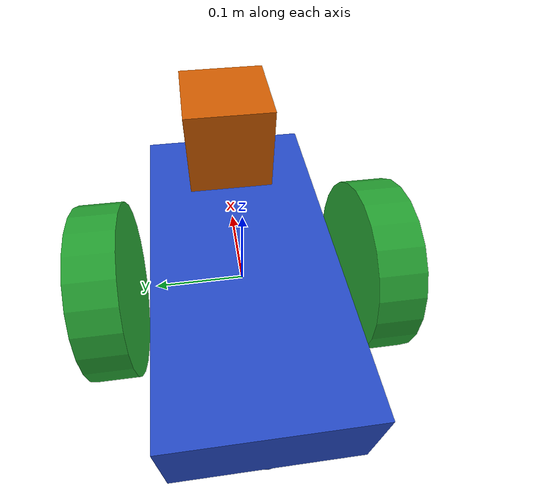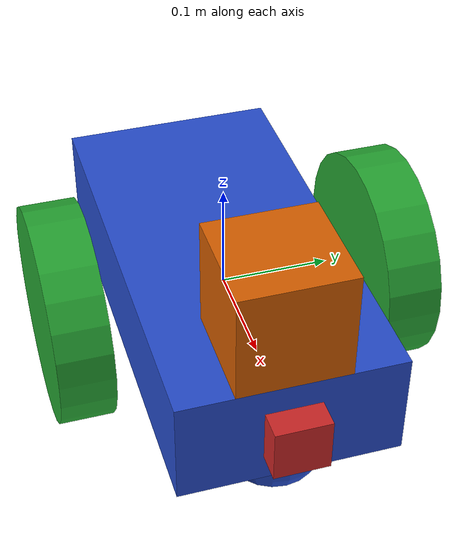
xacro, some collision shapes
<?xml version='1.0'?>

<robot name="my_robot" xmlns:xacro="http://www.ros.org/wiki/xacro">

                                                  <link name="robot_footprint"></link>

                                                  <joint name="robot_footprint_joint" type="fixed">
                                                    <origin xyz="0 0 0" rpy="0 0 0" />
                                                    <parent link="robot_footprint"/>
                                                    <child link="chassis" />
                                                  </joint>

                                                  <link name='chassis'>
                                                    <pose>0 0 0.1 0 0 0</pose>

                                                    <inertial>
                                                      <mass value="15.0"/>
                                                      <origin xyz="0.0 0 0" rpy=" 0 0 0"/>
                                                      <inertia
                                                          ixx="0.1" ixy="0" ixz="0"
                                                          iyy="0.1" iyz="0"
                                                          izz="0.1"
                                                      />
                                                    </inertial>

                                                    <collision name='collision'>
                                                      <origin xyz="0 0 0" rpy=" 0 0 0"/>
                                                      <geometry>
                                                        <box size=".4 .2 .1"/>
                                                      </geometry>
                                                    </collision>

                                                    <visual name='chassis_visual'>
                                                      <origin xyz="0 0 0" rpy=" 0 0 0"/>
                                                      <geometry>
                                                        <box size=".4 .2 .1"/>
                                                      </geometry>
                                                    </visual>

                                                    <collision name='back_caster_collision'>
                                                      <origin xyz="-0.15 0 -0.05" rpy=" 0 0 0"/>
                                                      <geometry>
                                                        <sphere radius="0.0499"/>
                                                      </geometry>
                                                    </collision>

                                                    <visual name='back_caster_visual'>
                                                      <origin xyz="-0.15 0 -0.05" rpy=" 0 0 0"/>
                                                      <geometry>
                                                        <sphere radius="0.05"/>
                                                      </geometry>
                                                    </visual>

                                                    <collision name='front_caster_collision'>
                                                      <origin xyz="0.15 0 -0.05" rpy=" 0 0 0"/>
                                                      <geometry>
                                                        <sphere radius="0.0499"/>
                                                      </geometry>
                                                    </collision>

                                                    <visual name='front_caster_visual'>
                                                      <origin xyz="0.15 0 -0.05" rpy=" 0 0 0"/>
                                                      <geometry>
                                                        <sphere radius="0.05"/>
                                                      </geometry>
                                                    </visual>

                                                  </link>
                                                  <gazebo reference="chassis">
							    <material>Gazebo/Blue</material>
						</gazebo>
                                                  <link name="left_wheel">
                                                    <inertial>
                                                      <mass value="5.0"/>
                                                      <origin xyz="0.0 0 0" rpy="0 0 0"/>
                                                      <inertia
                                                          ixx="0.1" ixy="0" ixz="0"
                                                          iyy="0.1" iyz="0"
                                                          izz="0.1"
                                                      />
                                                    </inertial>
                                                    <collision name='collision'>
                                                      <origin xyz="0.0 0 0" rpy="0 1.5707 1.5707"/>
                                                      <geometry>
                                                        <cylinder radius="0.1" length="0.05"/>
                                                      </geometry>
                                                    </collision>

                                                    <visual name='left_wheel_visual'>
                                                      <origin xyz="0.0 0 0" rpy="0 1.5707 1.5707"/>
                                                      <geometry>
                                                        <cylinder radius="0.1" length="0.05"/>
                                                      </geometry>
                                                    </visual>

                                                    </link>
                                                    	<gazebo reference="left_wheel">
							    <material>Gazebo/Green</material>
							</gazebo>
                                                    <joint type="continuous" name="left_wheel_hinge">
							    <origin xyz="0 0.15 0" rpy="0 0 0"/>
							    <child link="left_wheel"/>
							    <parent link="chassis"/>
							    <axis xyz="0 1 0" rpy="0 0 0"/>
							    <limit effort="10000" velocity="1000"/>
							    <dynamics damping="1.0" friction="1.0"/>
							    </joint>

						<link name="right_wheel">
                                                    <inertial>
                                                      <mass value="5.0"/>
                                                      <origin xyz="0.0 0 0" rpy="0 0 0"/>
                                                      <inertia
                                                          ixx="0.1" ixy="0" ixz="0"
                                                          iyy="0.1" iyz="0"
                                                          izz="0.1"
                                                      />
                                                    </inertial>
                                                    <collision name='collision'>
                                                      <origin xyz="0.0 0 0" rpy="0 1.5707 1.5707"/>
                                                      <geometry>
                                                        <cylinder radius="0.1" length="0.05"/>
                                                      </geometry>
                                                    </collision>

                                                    <visual name='right_wheel_visual'>
                                                      <origin xyz="0.0 0 0" rpy="0 1.5707 1.5707"/>
                                                      <geometry>
                                                        <cylinder radius="0.1" length="0.05"/>
                                                      </geometry>
                                                    </visual>

                                                    </link>
                                                    <gazebo reference="right_wheel">
							    <material>Gazebo/Green</material>
							</gazebo>
                                                    <joint type="continuous" name="right_wheel_hinge">
							    <origin xyz="0 -0.15 0" rpy="0 0 0"/>
							    <child link="right_wheel"/>
							    <parent link="chassis"/>
							    <axis xyz="0 1 0" rpy="0 0 0"/>
							    <limit effort="10000" velocity="1000"/>
							    <dynamics damping="1.0" friction="1.0"/>

							  </joint>
	<link name="camera">
		<inertial>
			<mass value="0.1"/>
			<origin xyz="0.0 0 0" rpy="0 0 0"/>
			<inertia
			ixx="1e-6" ixy="0" ixz="0"
			iyy="1e-6" iyz="0"
			izz="1e-6"
			/>
		</inertial>
		<collision name='collision'>
			<origin xyz="0.0 0 0" rpy="0 0 0"/>
			<geometry>
			<box size=".05 .05 .05"/>
			</geometry>
		</collision>

		<visual name='camera_visual'>
			<origin xyz="0.0 0 0" rpy="0 0 0"/>
			<geometry>
			<box size=".05 .05 .05"/>
			</geometry>
		</visual>

	</link>
	<gazebo reference="camera">
	    <material>Gazebo/Red</material>
	</gazebo>
	<joint type="fixed" name="camera_joint">
		<origin xyz="0.2 0 0" rpy="0 0 0"/>
		<child link="camera"/>
		<parent link="chassis"/>
		<axis xyz="0 1 0" rpy="0 0 0"/>

	</joint>

	<link name="hokuyo">
		<inertial>
			<mass value="1e-5"/>
			<origin xyz="0.0 0 0" rpy="0 0 0"/>
			<inertia
			ixx="1e-6" ixy="0" ixz="0"
			iyy="1e-6" iyz="0"
			izz="1e-6"
			/>
		</inertial>
		<collision name='collision'>
			<origin xyz="0.0 0 0" rpy="0 0 0"/>
			<geometry>
				<box size=".1 .1 .1"/>
			</geometry>
		</collision>

		<visual name='visual'>
			<origin xyz="0.0 0 0" rpy="0 0 0"/>
			<geometry>
				<mesh  filename = "package://my_robot/meshes/hokuyo.dae"/>
			</geometry>
		</visual>

	</link>
	<joint type="fixed" name="hokuyo_joint">
		<origin xyz="0.15 0 0.1" rpy="0 0 0"/>
		<child link="hokuyo"/>
		<parent link="chassis"/>
		<axis xyz="0 1 0" rpy="0 0 0"/>

	</joint>

  	<xacro:include filename="$(find my_robot)/urdf/my_robot.gazebo" />

</robot>
